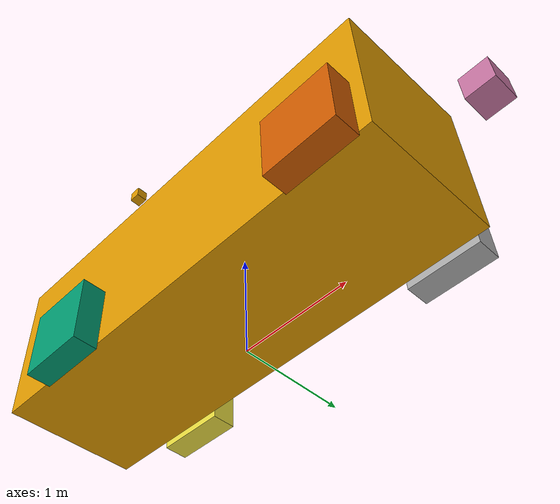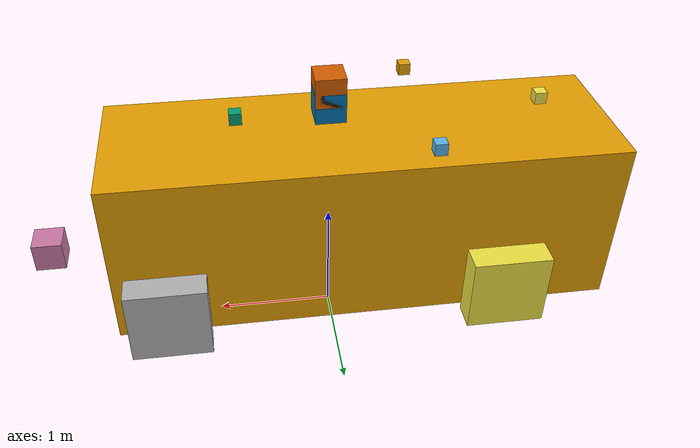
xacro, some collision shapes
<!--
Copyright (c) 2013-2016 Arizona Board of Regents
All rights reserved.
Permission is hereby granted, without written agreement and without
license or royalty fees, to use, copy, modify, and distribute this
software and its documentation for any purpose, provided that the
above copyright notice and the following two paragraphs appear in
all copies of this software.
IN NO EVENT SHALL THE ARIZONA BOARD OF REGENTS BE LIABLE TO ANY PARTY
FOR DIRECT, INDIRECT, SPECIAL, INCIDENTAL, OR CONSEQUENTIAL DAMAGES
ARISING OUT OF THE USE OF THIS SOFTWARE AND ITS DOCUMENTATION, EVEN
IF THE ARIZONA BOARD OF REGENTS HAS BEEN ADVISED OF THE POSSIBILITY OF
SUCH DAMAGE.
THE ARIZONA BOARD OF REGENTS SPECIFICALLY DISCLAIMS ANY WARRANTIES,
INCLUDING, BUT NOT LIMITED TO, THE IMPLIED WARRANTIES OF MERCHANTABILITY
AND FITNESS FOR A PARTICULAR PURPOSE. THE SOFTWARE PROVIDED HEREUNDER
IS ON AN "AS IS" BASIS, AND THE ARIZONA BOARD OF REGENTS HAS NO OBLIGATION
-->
<?xml version="1.0" ?>

<!-- Inertial parameters selected with the help of
http://www.car-engineer.com/vehicle-inertia-calculation-tool/
-->

<robot name="$(arg roboname)" xmlns:xacro="http://www.ros.org/wiki/xacro">

  <xacro:arg name="camera_left" default="true"/>
  <xacro:arg name="camera_right" default="true"/>
  <xacro:arg name="camera_front" default="true"/>
  <xacro:arg name="camera_back" default="true"/>

  <xacro:arg name="velodyne_points" default="true"/>
  <xacro:arg name="front_laser_points" default="true"/>

  <xacro:property name="PI" value="3.1415926835897931"/>
  <xacro:property name="base_height" value="1.0639"/>
  <xacro:property name="base_collision_height" value="1.3639"/>
  <xacro:property name="base_mass" value="2050"/>
  <xacro:property name="base_mass_ixx" value="647"/>
  <xacro:property name="base_mass_iyy" value="3291"/>
  <xacro:property name="base_mass_izz" value="3360"/>
  <xacro:property name="base_mass_ixz" value="-31"/>
  <xacro:property name="tyre_x" value="1.41"/>
  <xacro:property name="tyre_y" value="0.765"/>
  <xacro:property name="tyre_length" value="0.229"/>
  <xacro:property name="tyre_r" value="0.66"/>
  <xacro:property name="tyre_radius" value="0.356"/>
  <xacro:property name="tyre_mass" value="40"/>
 <xacro:property name="tyre_mass_ixx" value="2.0"/>
  <xacro:property name="tyre_mass_iyy" value="2.0"/>
  <xacro:property name="tyre_mass_izz" value="2.0"/>
  <xacro:property name="car_height" value="1.4478"/>
  <xacro:property name="car_to_bumper" value="2.4"/>
  <xacro:property name="front_bumper_height" value="${car_height/2}"/>
  <xacro:property name="sensor_box" value="0.25"/>
  <xacro:property name="sensor_box2" value="0.01"/>
  <xacro:property name="camera_box" value="0.1"/>
  <xacro:property name="tyre_height" value="-0.696"/>
  <xacro:property name="str_length" value="0.01"/>
  <xacro:property name="str_radius" value="0.1"/>
  <xacro:property name="str_angle" value="0.6"/>
  <xacro:property name="car_width" value="1.301"/>
  <xacro:property name="front_laser_points" value="$(arg front_laser_points)"/>
  <xacro:property name="velodyne_points" value="$(arg velodyne_points)"/>
  <xacro:property name="camera_right" value="$(arg camera_right)"/>
  <xacro:property name="camera_left" value="$(arg camera_left)"/>
  <xacro:property name="camera_front" value="$(arg camera_front)"/>
  <xacro:property name="camera_back" value="$(arg camera_back)"/>
  <xacro:property name="tyre_origin">
	<origin xyz="0 0 0" rpy="${PI/2} 0 0"/>
  </xacro:property>
  <xacro:property name="tyre_origin_2">
        <origin xyz="0 0 0" rpy="0 0 ${PI/2}"/>
  </xacro:property>
  <xacro:property name="tyre_origin_3">
        <origin xyz="0 0 0" rpy="0 0 ${-PI/2}"/>
  </xacro:property>

    <xacro:if value="${front_laser_points}">
    	<xacro:include filename="$(find catvehicle)/urdf/catvehicle_front_laser_points.gazebo"/>
    </xacro:if>
    <xacro:if value="${velodyne_points}">
      <!-- You can pass parameters in order to change the max/min
           horizontal angles of the velodyne sensors. These are interpreted
           in the velodyne_points gazebo file -->
      <xacro:arg name="velodyne_min_angle" default="-0.4"/>
      <xacro:arg name="velodyne_max_angle" default="0.4"/>
      <xacro:property name="velodyne_min_angle" value="$(arg velodyne_min_angle)"/>
      <xacro:property name="velodyne_max_angle" value="$(arg velodyne_max_angle)"/>

    	<xacro:include filename="$(find catvehicle)/urdf/catvehicle_velodyne_points.gazebo"/>
    </xacro:if>
    <xacro:if value="${camera_right}">
    	<xacro:include filename="$(find catvehicle)/urdf/catvehicle_right_camera.gazebo"/>
    </xacro:if>
    <xacro:if value="${camera_left}">
    	<xacro:include filename="$(find catvehicle)/urdf/catvehicle_left_camera.gazebo"/>
    </xacro:if>
    <xacro:if value="${camera_front}">
    	<xacro:include filename="$(find catvehicle)/urdf/catvehicle_front_camera.gazebo"/>
    </xacro:if>
    <xacro:if value="${camera_back}">
    	<xacro:include filename="$(find catvehicle)/urdf/catvehicle_back_camera.gazebo"/>
    </xacro:if>

<!--Car Body-->

<link name="base_link">
    <collision>
         <origin xyz="0 0 ${base_collision_height}" rpy="0 0 0"/>
           <geometry>
            <box size="4.192 ${car_width} ${car_height}"/>
        </geometry>
      </collision>
     <visual>
        <origin xyz="-0.25 0 ${base_height + 0.05}" rpy="0 0 0"/>
        <geometry>
          <box size="4.192 ${car_width} ${car_height}"/>
        </geometry>
     </visual>
</link>

<joint name="inertial_joint" type="fixed">
      <parent link="base_link"/>
      <child link="main_mass"/>
      <origin xyz="0 0 0" rpy="0 0 0"/>
</joint>

<link name="main_mass" type="fixed">
     <parent link="inertial_joint"/>
     <inertial>
        <origin xyz="0 0 ${base_height}" rpy="0 0 0"/>
        <mass value="${base_mass}"/>
        <inertia
          ixx="${base_mass_ixx}"  ixy="0.000000" ixz="${base_mass_ixz}"
          iyy="${base_mass_iyy}" iyz="0.000000"
          izz="${base_mass_izz}"/>
      </inertial>
</link>

<!--Back Right Wheel-->

<joint name="back_right_wheel_joint" type="continuous">
      <parent link="base_link"/>
      <child link="back_right_wheel_link"/>
      <origin xyz="${-tyre_x} ${-tyre_y} ${tyre_r}" rpy="0 0 0"/>
      <axis xyz="0 1 0"/>
      <dynamics damping="0.1"/>
     <limit effort="100000" velocity="10000" />
      <joint_properties damping="0.0" friction="0.0" />
</joint>

<link name="back_right_wheel_link">
     <collision>
      <xacro:insert_block name="tyre_origin"/>
        <geometry>
         <cylinder length="${tyre_length}" radius="${tyre_radius}"/>
        </geometry>
     </collision>

     <visual>
         <origin xyz="0 0 0" rpy="${PI/2} 0 0"/>
      <xacro:insert_block name="tyre_origin_3"/>
        <geometry>
          <box size="${tyre_r} ${tyre_r} ${tyre_length}"/>
      <scale xyz="1.2 1 1"/>
        </geometry>
      </visual>

      <inertial>
        <origin xyz="0 0 0" rpy="0 0 0"/>
        <mass value="${tyre_mass}"/>
        <inertia
          ixx="${tyre_mass_ixx}"  ixy="0.000000"  ixz="0.000000"
          iyy="${tyre_mass_iyy}"  iyz="0.000000"
          izz="${tyre_mass_izz}"/>
      </inertial>
</link>

<!--Back Left Wheel-->

<joint name="back_left_wheel_joint" type="continuous">
      <parent link="base_link"/>
      <child link="back_left_wheel_link"/>
      <origin xyz="${-tyre_x} ${tyre_y} ${tyre_r}" rpy="0 0 0"/>
      <axis xyz="0 1 0"/>
      <dynamics damping="0.1"/>
      <limit effort="100000" velocity="10000" />
      <joint_properties damping="0.0" friction="0.0" />
</joint>

<link name="back_left_wheel_link">
     <collision>
      <xacro:insert_block name="tyre_origin"/>
        <geometry>
         <cylinder length="0.229" radius="${tyre_radius}"/>
        </geometry>
     </collision>

     <visual>
         <origin xyz="0 0 0" rpy="${PI/2} 0 0"/>
      <xacro:insert_block name="tyre_origin_2"/>
        <geometry>
          <box size="${tyre_r} ${tyre_r} ${tyre_length}"/>
          <scale xyz="1.2 1 1"/>
        </geometry>
      </visual>

      <inertial>
        <origin xyz="0 0 0" rpy="0 0 0"/>
        <mass value="${tyre_mass}"/>
        <inertia
          ixx="${tyre_mass_ixx}"  ixy="0.000000"  ixz="0.000000"
          iyy="${tyre_mass_iyy}"  iyz="0.000000"
          izz="${tyre_mass_izz}"/>
      </inertial>
</link>

<!--Right Steering-->

<joint name="front_right_steering_joint" type="revolute">
	<parent link="base_link"/>
	<child link="front_right_steering_link"/>
	<origin xyz="${tyre_x} ${-car_width/2 - str_length/2} ${tyre_r}" rpy="0 0 0"/>
    <axis xyz="0 0 1"/>
	<limit lower="${-str_angle}" upper="${str_angle}" effort="1000000.0" velocity="10000.0"/>
	<dynamics damping="100"/>
</joint>

<link name="front_right_steering_link">
	<collision>
	      <xacro:insert_block name="tyre_origin"/>
	        <geometry>
        	 <cylinder length="${str_length}" radius="${str_radius}"/>
       		</geometry>
	</collision>

	<visual>
              <xacro:insert_block name="tyre_origin"/>
                <geometry>
                 <cylinder length="${str_length}" radius="${str_radius}"/>
                </geometry>
	</visual>

      <inertial>
        <origin xyz="0 0 0" rpy="0 0 0"/>
        <mass value="10.00"/>
        <inertia
          ixx="0.4"  ixy="0.000000"  ixz="0.000000"
          iyy="0.6"  iyz="0.000000"
          izz="0.4"/>
      </inertial>
</link>

<!--Right Front Wheel-->

<joint name="front_right_wheel_joint" type="continuous">
      <parent link="front_right_steering_link"/>
      <child link="front_right_wheel_link"/>
      <origin xyz="0 ${-str_length/2 - tyre_length/2} 0" rpy="0 0 0"/>
      <axis xyz="0 1 0"/>
      <dynamics damping="0.1"/>
     <limit effort="1000000" velocity="10000" />
      <joint_properties damping="0.0" friction="0.0" />
</joint>

<link name="front_right_wheel_link">
     <collision>
      <xacro:insert_block name="tyre_origin"/>
        <geometry>
         <cylinder length="${tyre_length}" radius="${tyre_radius}"/>
	</geometry>
     </collision>

     <visual>
         <origin xyz="0 0 0" rpy="${PI/2} 0 0"/>
      <xacro:insert_block name="tyre_origin_3"/>
        <geometry>
          <box size="${tyre_r} ${tyre_r} ${tyre_length}"/>
        <scale xyz="1.2 1 1"/>
       </geometry>
      </visual>

      <inertial>
        <origin xyz="0 0 0" rpy="0 0 0"/>
        <mass value="${tyre_mass}"/>
        <inertia
          ixx="${tyre_mass_ixx}"  ixy="0.000000"  ixz="0.000000"
          iyy="${tyre_mass_iyy}"  iyz="0.000000"
          izz="${tyre_mass_izz}"/>
      </inertial>
</link>

<!--Left Steering-->

<joint name="front_left_steering_joint" type="revolute">
        <parent link="base_link"/>
        <child link="front_left_steering_link"/>
        <origin xyz="${tyre_x} ${car_width/2 + str_length/2} ${tyre_r}" rpy="0 0 0"/>
        <axis xyz="0 0 1"/>
        <limit lower="${-str_angle}" upper="${str_angle}" effort="1000000.0" velocity="10000.0"/>
        <!-- This simulates a real actuator, not instantaneous, otherwise its oscilates a lot. This is due to the lack of derivative value in PID-->
        <dynamics damping="100"/>
</joint>

<link name="front_left_steering_link">
      <parent link="base_link"/>
        <collision>
              <xacro:insert_block name="tyre_origin"/>
                <geometry>
                 <cylinder length="${str_length}" radius="${str_radius}"/>
                </geometry>
        </collision>

        <visual>
              <xacro:insert_block name="tyre_origin"/>
                <geometry>
                 <cylinder length="${str_length}" radius="${str_radius}"/>
                </geometry>
        </visual>

      <inertial>
        <origin xyz="0 0 0" rpy="0 0 0"/>
        <mass value="10.00"/>
        <inertia
          ixx="0.4"  ixy="0.000000"  ixz="0.000000"
          iyy="0.6"  iyz="0.000000"
          izz="0.4"/>
      </inertial>
</link>

<!--Left Front Wheel-->

<joint name="front_left_wheel_joint" type="continuous">
      <parent link="front_left_steering_link"/>
      <child link="front_left_wheel_link"/>
      <origin xyz="0 ${str_length/2 + tyre_length/2} 0" rpy="0 0 0"/>
      <axis xyz="0 1 0"/>

      <dynamics damping="0.1"/>
      <limit effort="1000000" velocity="10000" />
      <joint_properties damping="0.0" friction="0.0" />

</joint>

<link name="front_left_wheel_link">
     <parent link="front_left_wheel_joint"/>
     <collision>
	<origin xyz="0 0 0" rpy="${PI/2} 0 0"/>
        <geometry>
         <cylinder length="0.229" radius="${tyre_radius}"/>
        </geometry>
     </collision>

     <visual>
      <origin xyz="0 0 0" rpy="${PI/2} 0 0"/>
      <xacro:insert_block name="tyre_origin_2"/>
       <geometry>
          <box size="${tyre_r} ${tyre_r} ${tyre_length}"/>
          <scale xyz="1.2 1 1"/>
       </geometry>
      </visual>

      <inertial>
        <origin xyz="0 0 0" rpy="0 0 0"/>
        <mass value="${tyre_mass}"/>
        <inertia
          ixx="${tyre_mass_ixx}"  ixy="0.000000"  ixz="0.000000"
          iyy="${tyre_mass_iyy}"  iyz="0.000000"
          izz="${tyre_mass_izz}"/>
      </inertial>
</link>

<!-- Cameras-->

<joint name="camera_right_joint" type="fixed">
<origin xyz="-0.75 -${car_width/2} ${0.725 + camera_box/2 + 1.25}" rpy="0 0 -${PI/2}"/>
	<axis xyz="0 0 1"/>
	<parent link="base_link"/>
	<child link="camera_right_link"/>
</joint>

<link name="camera_right_link">
	<collision>
	  <origin xyz="0 0 0" rpy="0 0 0"/>
	  <geometry>
	   <box size="${camera_box} ${camera_box} ${camera_box}"/>
	  </geometry>
	</collision>

	<visual>
	  <origin xyz="0 0 0" rpy="0 0 0"/>
	  <geometry>
	  <box size="${camera_box} ${camera_box} ${camera_box}"
/>
          </geometry>
	</visual>

    <inertial>
      <mass value="1e-5" />
      <origin xyz="0 0 0" rpy="0 0 0"/>
      <inertia ixx="1e-6" ixy="0" ixz="0" iyy="1e-6" iyz="0" izz="1e-6" />
    </inertial>
</link>

<joint name="camera_left_joint" type="fixed">
<origin xyz="-0.75 ${car_width/2} ${0.725 + camera_box/2 + 1.25}" rpy="0 0 ${PI/2}"/>
	<axis xyz="0 0 1"/>
	<parent link="base_link"/>
	<child link="camera_left_link"/>
</joint>

<link name="camera_left_link">
	<collision>
	  <origin xyz="0 0 0" rpy="0 0 0"/>
	  <geometry>
	   <box size="${camera_box} ${camera_box} ${camera_box}"/>
	  </geometry>
	</collision>

	<visual>
	  <origin xyz="0 0 0" rpy="0 0 0"/>
	  <geometry>
	  <box size="${camera_box} ${camera_box} ${camera_box}"
/>
          </geometry>
	</visual>

    <inertial>
      <mass value="1e-5" />
      <origin xyz="0 0 0" rpy="0 0 0"/>
      <inertia ixx="1e-6" ixy="0" ixz="0" iyy="1e-6" iyz="0" izz="1e-6" />
    </inertial>
</link>

<joint name="camera_front_joint" type="fixed">
<origin xyz="0.75 0.0 ${0.725 + camera_box/2 + 1.25}" rpy="0 0 0"/>
	<axis xyz="0 0 1"/>
	<parent link="base_link"/>
	<child link="camera_front_link"/>
</joint>

<link name="camera_front_link">
	<collision>
	  <origin xyz="0 0 0" rpy="0 0 0"/>
	  <geometry>
	   <box size="${camera_box} ${camera_box} ${camera_box}"/>
	  </geometry>
	</collision>

	<visual>
	  <origin xyz="0 0 0" rpy="0 0 0"/>
	  <geometry>
	  <box size="${camera_box} ${camera_box} ${camera_box}"
/>
          </geometry>
	</visual>

    <inertial>
      <mass value="1e-5" />
      <origin xyz="0 0 0" rpy="0 0 0"/>
      <inertia ixx="1e-6" ixy="0" ixz="0" iyy="1e-6" iyz="0" izz="1e-6" />
    </inertial>
</link>

<joint name="camera_back_joint" type="fixed">
<origin xyz="-1.75 0.0 ${0.725 + camera_box/2 + 1.25}" rpy="0 0 -${PI}"/>
	<axis xyz="0 0 1"/>
	<parent link="base_link"/>
	<child link="camera_back_link"/>
</joint>

<link name="camera_back_link">
	<collision>
	  <origin xyz="0 0 0" rpy="0 0 0"/>
	  <geometry>
	   <box size="${camera_box} ${camera_box} ${camera_box}"/>
	  </geometry>
	</collision>

	<visual>
	  <origin xyz="0 0 0" rpy="0 0 0"/>
	  <geometry>
	  <box size="${camera_box} ${camera_box} ${camera_box}"
/>
          </geometry>
	</visual>

    <inertial>
      <mass value="1e-5" />
      <origin xyz="0 0 0" rpy="0 0 0"/>
      <inertia ixx="1e-6" ixy="0" ixz="0" iyy="1e-6" iyz="0" izz="1e-6" />
    </inertial>
</link>

<!--Velodyne LIDAR-->

<joint name="camera_joint" type="fixed">
<origin xyz="0 0 ${0.725 + sensor_box/2 + 1.25}" rpy="0 0 0"/>
	<axis xyz="0 0 1"/>
	<parent link="base_link"/>
	<child link="camera_link"/>
</joint>

<link name="camera_link">
	<collision>
	  <origin xyz="0 0 0" rpy="0 0 0"/>
	  <geometry>
	   <box size="${sensor_box} ${sensor_box} ${sensor_box}"/>
	  </geometry>
	</collision>

	<visual>
	  <origin xyz="0 0 0" rpy="0 0 0"/>
	  <geometry>
	  <box size="${sensor_box} ${sensor_box} ${sensor_box}"
/>
          </geometry>
	</visual>

    <inertial>
      <mass value="1e-5" />
      <origin xyz="0 0 0" rpy="0 0 0"/>
      <inertia ixx="1e-6" ixy="0" ixz="0" iyy="1e-6" iyz="0" izz="1e-6" />
    </inertial>
</link>

<joint name="velodyne_joint" type="fixed">
	<origin xyz="0 0 ${sensor_box/2 + 0.01}" rpy="0 0 0"/>
	<axis xyz="0 0 1"/>
	<parent link="camera_link"/>
	<child link="velodyne_link"/>
</joint>

<link name="velodyne_link">
        <collision>
          <origin xyz="0 0 0" rpy="0 0 0"/>
          <geometry>
           <box size="${sensor_box} ${sensor_box} ${sensor_box}"/>
          </geometry>
        </collision>

        <visual>
          <origin xyz="0 0 0" rpy="0 0 0"/>
          <geometry>
           <mesh filename="package://catvehicle/meshes/hokuyo.dae"/>
          </geometry>
        </visual>

    <inertial>
      <mass value="1e-5" />
      <origin xyz="0 0 0" rpy="0 0 0"/>
      <inertia ixx="1e-6" ixy="0" ixz="0" iyy="1e-6" iyz="0" izz="1e-6" />
    </inertial>
</link>

<joint name="front_laser_joint" type="fixed">
	<origin xyz="${car_to_bumper} 0 ${front_bumper_height + sensor_box/2 + 0.01}" rpy="0 0 0"/>
	<axis xyz="0 0 1"/>
	<parent link="base_link"/>
	<child link="front_laser_link"/>
</joint>

<link name="front_laser_link">
     <parent link="front_laser_joint"/>
        <collision>
          <origin xyz="0 0 0" rpy="0 0.0 0"/>
          <geometry>
           <box size="${sensor_box} ${sensor_box} ${sensor_box}"/>
          </geometry>
        </collision>

        <visual>
          <origin xyz="0 0 0" rpy="0 0 0"/>
          <geometry>
           <box size="${sensor_box} ${sensor_box} ${sensor_box}"/>
          </geometry>
        </visual>

    <inertial>
      <mass value="1e-5" />
      <origin xyz="0 0 0" rpy="0 0 0"/>
      <inertia ixx="1e-6" ixy="0" ixz="0" iyy="1e-6" iyz="0" izz="1e-6" />
    </inertial>
</link>

<!-- motors and transmissions for the two rear wheels -->
  <transmission name="tran1">
    <type>transmission_interface/SimpleTransmission</type>
    <joint name="back_right_wheel_joint">
      <hardwareInterface>hardware_interface/VelocityJointInterface</hardwareInterface>
    </joint>
    <actuator name="motor1">
      <hardwareInterface>hardware_interface/VelocityJointInterface</hardwareInterface>
      <mechanicalReduction>1</mechanicalReduction>
    </actuator>
  </transmission>

  <transmission name="tran2">
    <type>transmission_interface/SimpleTransmission</type>
    <joint name="back_left_wheel_joint">
      <hardwareInterface>hardware_interface/VelocityJointInterface</hardwareInterface>
    </joint>
    <actuator name="motor2">
      <hardwareInterface>hardware_interface/VelocityJointInterface</hardwareInterface>
      <mechanicalReduction>1</mechanicalReduction>
    </actuator>
  </transmission>

  <transmission name="rack_and_pinion_left">
    <type>transmission_interface/SimpleTransmission</type>
    <joint name="front_left_steering_joint">
      <hardwareInterface>hardware_interface/EffortJointInterface</hardwareInterface>
    </joint>
    <actuator name="eps_left">
      <hardwareInterface>hardware_interface/EffortJointInterface</hardwareInterface>
      	<mechanicalReduction>1</mechanicalReduction>
        <motorTorqueConstant>1000000</motorTorqueConstant>
    </actuator>
  </transmission>

  <transmission name="rack_and_pinion_right">
    <type>transmission_interface/SimpleTransmission</type>
    <joint name="front_right_steering_joint">
      <hardwareInterface>hardware_interface/EffortJointInterface</hardwareInterface>
    </joint>
    <actuator name="eps_right">
      <hardwareInterface>hardware_interface/EffortJointInterface</hardwareInterface>
      	<mechanicalReduction>1</mechanicalReduction>
        <motorTorqueConstant>1000000</motorTorqueConstant>
    </actuator>
  </transmission>

<!-- Friction Parametres -->

<gazebo reference="back_right_wheel_link">
	      <mu1>10000000</mu1>
              <mu2>10000000</mu2>
		<kp>10000000</kp>
		<kd>1</kd>
		<minDepth>0.01</minDepth>
		<maxVel>10.0</maxVel>
</gazebo>

<gazebo reference="back_left_wheel_link">
              <mu1>10000000</mu1>
              <mu2>10000000</mu2>
		<kp>10000000</kp>
                <kd>1</kd>
                <minDepth>0.01</minDepth>
                <maxVel>10.0</maxVel>
</gazebo>

<gazebo reference="front_right_wheel_link">
	      <mu1>1</mu1>
              <mu2>1</mu2>
                <kp>10000000</kp>
                <kd>1</kd>
                <minDepth>0.01</minDepth>
                <maxVel>100.0</maxVel>
</gazebo>

<gazebo reference="front_left_wheel_link">
	      <mu1>1</mu1>
              <mu2>1</mu2>
                <kp>10000000</kp>
                <kd>1</kd>
                <minDepth>0.01</minDepth>
                <maxVel>100.0</maxVel>
</gazebo>

<gazebo reference="front_right_steering_link">
   <mu1>0.6</mu1>
   <mu2>0.5</mu2>
                <kp>1000000</kp>
                <kd>0.1</kd>
                <minDepth>0.01</minDepth>
                <maxVel>10.0</maxVel>
</gazebo>

<gazebo reference="front_left_steering_link">
   <mu1>0.6</mu1>
   <mu2>0.5</mu2>
                <kp>1000000</kp>
                <kd>0.1</kd>
                <minDepth>0.01</minDepth>
                <maxVel>10.0</maxVel>
</gazebo>

<!-- Gazebo Plugins -->
<gazebo>
  <plugin name="gazebo_ros_control" filename="libgazebo_ros_control.so">
    <robotNamespace>/$(arg roboname)</robotNamespace>
    <robotParam>robot_description</robotParam>
    <robotSimType>gazebo_ros_control/DefaultRobotHWSim</robotSimType>
  </plugin>
</gazebo>

<gazebo>
    <plugin filename="libgazebo_ros_joint_state_publisher.so" name="joint_state_publisher">
      <jointName>back_left_wheel_joint, back_right_wheel_joint, front_left_steering_joint, front_right_steering_joint, front_right_wheel_joint, front_left_wheel_joint</jointName>
      <updateRate>50.0</updateRate>
      <robotNamespace>/$(arg roboname)</robotNamespace>
      <alwaysOn>true</alwaysOn>
    </plugin>
</gazebo>

<gazebo>
  <plugin name="cmdvel_controller" filename="libcatvehiclegazebo.so">
	<robotNamespace>/$(arg roboname)</robotNamespace>
  </plugin>
</gazebo>

<!-- GPS Sensor -->

  <gazebo>
    <plugin name="novatel_gps_sim" filename="libhector_gazebo_ros_gps.so">
      <alwaysOn>1</alwaysOn>
      <updateRate>10.0</updateRate>
      <bodyName>base_link</bodyName>
      <topicName>fix</topicName>
      <velocityTopicName>fix_velocity</velocityTopicName>
      <drift>5.0 5.0 5.0</drift>
      <gaussianNoise>0.1 0.1 0.1</gaussianNoise>
      <velocityDrift>0 0 0</velocityDrift>
      <velocityGaussianNoise>0.1 0.1 0.1</velocityGaussianNoise>
    </plugin>
   </gazebo>

</robot>
